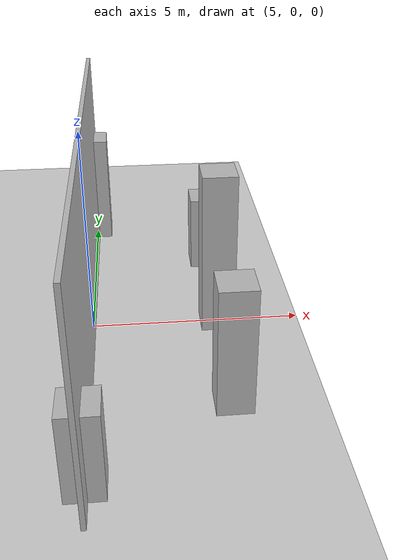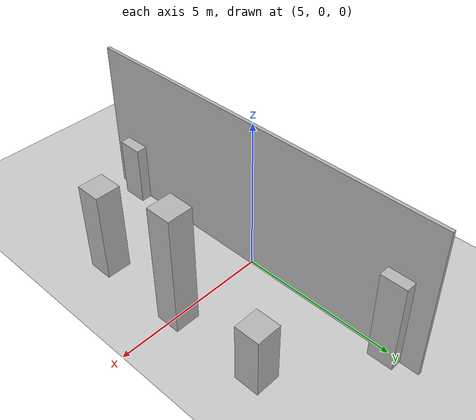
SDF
<?xml version='1.0' encoding='utf-8'?>
<sdf version="1.5">
  <world name="default">

    <include>
      <uri>model://sun</uri>
    </include>

    <include>
      <uri>model://ground_plane</uri>
    </include>
    <physics name="default_physics" default="0" type="ode">
      <gravity>0 0 -9.8066</gravity>
      <ode>
        <solver>
          <type>quick</type>
          <iters>10</iters>
          <sor>1.3</sor>
          <use_dynamic_moi_rescaling>0</use_dynamic_moi_rescaling>
        </solver>
        <constraints>
          <cfm>0</cfm>
          <erp>0.2</erp>
          <contact_max_correcting_vel>100</contact_max_correcting_vel>
          <contact_surface_layer>0.001</contact_surface_layer>
        </constraints>
      </ode>
      <max_step_size>0.004</max_step_size>
      <real_time_factor>1</real_time_factor>
      <real_time_update_rate>250</real_time_update_rate>
      <magnetic_field>6.0e-6 2.3e-5 -4.2e-5</magnetic_field>
    </physics>
  <model name="vio_feature_floor"><static>true</static>
      <pose>0 0 0.003 0 0 0</pose><link name="surface">
      <visual name="features"><geometry><plane><normal>0 0 1</normal><size>20 20</size></plane></geometry>
      <material><script><uri>file:///home/fxxk/px4_agent/vio/materials/scripts</uri><uri>file:///home/fxxk/px4_agent/vio/materials/textures</uri>
        <name>VIO/Features</name></script></material></visual></link></model><model name="vio_landmark_0"><static>true</static>
          <pose>8 -3 1.5 0 0 0</pose><link name="box">
          <collision name="collision"><geometry><box><size>0.8 0.8 3</size></box></geometry></collision>
          <visual name="texture"><geometry><box><size>0.8 0.8 3</size></box></geometry><material><script><uri>file:///home/fxxk/px4_agent/vio/materials/scripts</uri><uri>file:///home/fxxk/px4_agent/vio/materials/textures</uri>
        <name>VIO/Features</name></script></material></visual>
          </link></model><model name="vio_landmark_1"><static>true</static>
          <pose>8 0 2.0 0 0 0</pose><link name="box">
          <collision name="collision"><geometry><box><size>0.8 0.8 4</size></box></geometry></collision>
          <visual name="texture"><geometry><box><size>0.8 0.8 4</size></box></geometry><material><script><uri>file:///home/fxxk/px4_agent/vio/materials/scripts</uri><uri>file:///home/fxxk/px4_agent/vio/materials/textures</uri>
        <name>VIO/Features</name></script></material></visual>
          </link></model><model name="vio_landmark_2"><static>true</static>
          <pose>8 3 1.0 0 0 0</pose><link name="box">
          <collision name="collision"><geometry><box><size>0.8 0.8 2</size></box></geometry></collision>
          <visual name="texture"><geometry><box><size>0.8 0.8 2</size></box></geometry><material><script><uri>file:///home/fxxk/px4_agent/vio/materials/scripts</uri><uri>file:///home/fxxk/px4_agent/vio/materials/textures</uri>
        <name>VIO/Features</name></script></material></visual>
          </link></model><model name="vio_landmark_3"><static>true</static>
          <pose>5 -5 1.0 0 0 0</pose><link name="box">
          <collision name="collision"><geometry><box><size>0.8 0.8 2</size></box></geometry></collision>
          <visual name="texture"><geometry><box><size>0.8 0.8 2</size></box></geometry><material><script><uri>file:///home/fxxk/px4_agent/vio/materials/scripts</uri><uri>file:///home/fxxk/px4_agent/vio/materials/textures</uri>
        <name>VIO/Features</name></script></material></visual>
          </link></model><model name="vio_landmark_4"><static>true</static>
          <pose>5 5 1.5 0 0 0</pose><link name="box">
          <collision name="collision"><geometry><box><size>0.8 0.8 3</size></box></geometry></collision>
          <visual name="texture"><geometry><box><size>0.8 0.8 3</size></box></geometry><material><script><uri>file:///home/fxxk/px4_agent/vio/materials/scripts</uri><uri>file:///home/fxxk/px4_agent/vio/materials/textures</uri>
        <name>VIO/Features</name></script></material></visual>
          </link></model><model name="vio_feature_wall"><static>true</static>
      <pose>5 0 2.5 0 0 0</pose><link name="wall">
      <collision name="collision"><geometry><box><size>0.1 12 5</size></box></geometry></collision>
      <visual name="features"><geometry><box><size>0.1 12 5</size></box></geometry>
      <material><script><uri>file:///home/fxxk/px4_agent/vio/materials/scripts</uri><uri>file:///home/fxxk/px4_agent/vio/materials/textures</uri>
        <name>VIO/Wall</name></script></material></visual></link></model></world>
</sdf>
